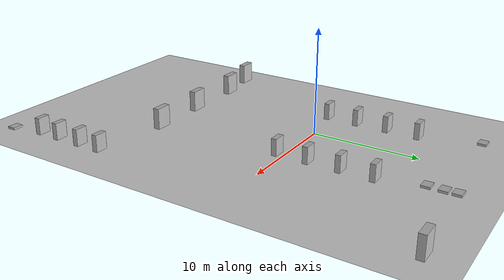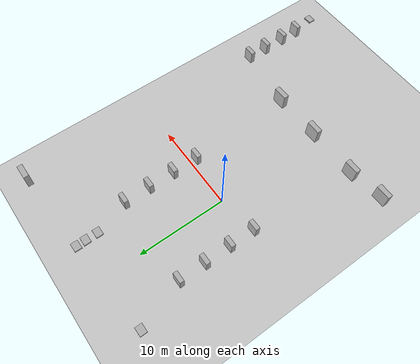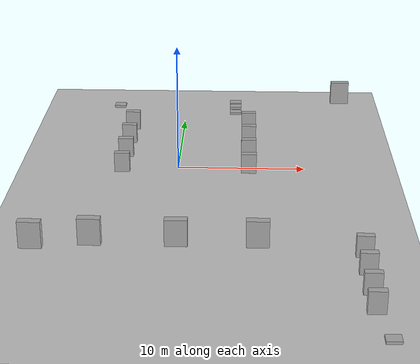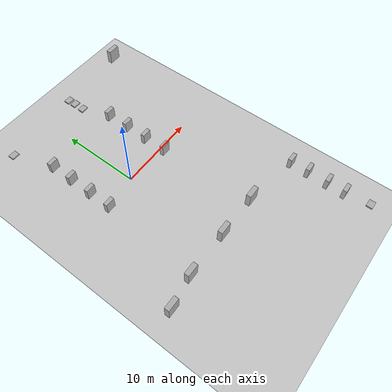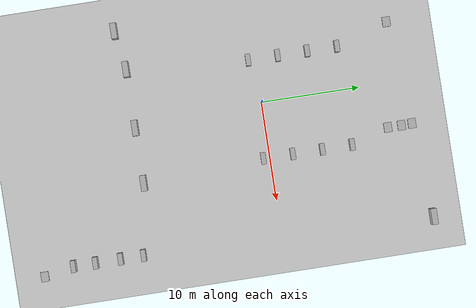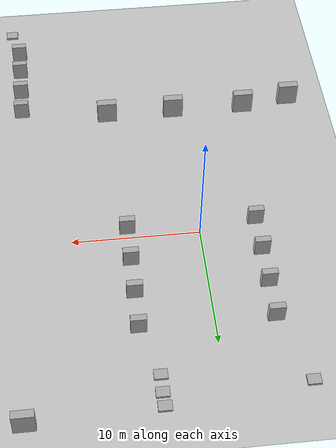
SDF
<sdf version="1.9">
 <world name="world_demo">
  <gravity>0 0 -9.8</gravity>
  <physics type="ode">
   <max_step_size>0.01</max_step_size>
   <real_time_factor>1</real_time_factor>
   <real_time_update_rate>1000</real_time_update_rate>
  </physics>
  <plugin name="ignition::gazebo::systems::Physics" filename="libignition-gazebo-physics-system.so"/>
  <plugin name="ignition::gazebo::systems::UserCommands" filename="libignition-gazebo-user-commands-system.so"/>
  <plugin name="ignition::gazebo::systems::SceneBroadcaster" filename="libignition-gazebo-scene-broadcaster-system.so"/>
  <plugin name="ignition::gazebo::systems::Imu" filename="ignition-gazebo-imu-system"/>
  <plugin name="ignition::gazebo::systems::Sensors" filename="ignition-gazebo-sensors-system">
   <render_engine>ogre2</render_engine>
  </plugin>
  <scene>
   <ambient>1 1 1 1</ambient>
   <background>0.3 0.7 0.9 1</background>
   <shadows>false</shadows>
   <grid>false</grid>
  </scene>
  <magnetic_field>6e-06 2.3e-05 -4.2e-05</magnetic_field>
  <atmosphere type="adiabatic"/>
  <model name="ground_plane">
   <static>true</static>
   <link name="ground">
    <visual name="visual">
     <geometry><plane><normal>0 0 1</normal><size>1000 1000</size></plane></geometry>
     <material>
      <ambient>0.8 0.8 0.8 1</ambient>
      <diffuse>0.8 0.8 0.8 1</diffuse>
      <specular>0.8 0.8 0.8 1</specular>
      <emissive>0.0 0.0 0.0 1</emissive>
     </material>
    </visual>
    <collision name="collision">
     <geometry><plane><normal>0 0 1</normal><size>100 100</size></plane></geometry>
    </collision>
    <inertial>
     <mass>1</mass>
     <inertia><ixx>1</ixx><ixy>0</ixy><ixz>0</ixz><iyy>1</iyy><iyz>0</iyz><izz>1</izz></inertia>
    </inertial>
   </link>
  </model>
  <include>
   <uri>https://fuel.ignitionrobotics.org/1.0/MovAi/models/shelf_big</uri>
   <name>shelf_big_0</name>
   <pose>-9.34177 -13.5598 0 0 -0 0</pose>
  </include>
  <include>
   <uri>https://fuel.ignitionrobotics.org/1.0/MovAi/models/shelf</uri>
   <name>shelf</name>
   <pose>-4.41528 -0.690987 0 0 -0 0</pose>
  </include>
  <include>
   <uri>https://fuel.ignitionrobotics.org/1.0/MovAi/models/shelf</uri>
   <name>shelf_0</name>
   <pose>-4.41528 2.30697 0 0 -0 0</pose>
  </include>
  <include>
   <uri>https://fuel.ignitionrobotics.org/1.0/MovAi/models/shelf</uri>
   <name>shelf_1</name>
   <pose>-4.41528 5.30708 0 0 -0 0</pose>
  </include>
  <include>
   <uri>https://fuel.ignitionrobotics.org/1.0/MovAi/models/shelf</uri>
   <name>shelf_2</name>
   <pose>-4.41528 8.34352 0 0 -0 0</pose>
  </include>
  <include>
   <uri>https://fuel.ignitionrobotics.org/1.0/MovAi/models/shelf</uri>
   <name>shelf_3</name>
   <pose>5.60144 8.34352 0 0 -0 0</pose>
  </include>
  <include>
   <uri>https://fuel.ignitionrobotics.org/1.0/MovAi/models/shelf</uri>
   <name>shelf_4</name>
   <pose>5.60144 5.30708 0 0 -0 0</pose>
  </include>
  <include>
   <uri>https://fuel.ignitionrobotics.org/1.0/MovAi/models/shelf</uri>
   <name>shelf_5</name>
   <pose>5.60144 -0.690987 0 0 -0 0</pose>
  </include>
  <include>
   <uri>https://fuel.ignitionrobotics.org/1.0/MovAi/models/shelf</uri>
   <name>shelf_6</name>
   <pose>5.60144 2.30697 0 0 -0 0</pose>
  </include>
  <include>
   <uri>https://fuel.ignitionrobotics.org/1.0/MovAi/models/pallet_box_mobile</uri>
   <name>pallet_box_mobile</name>
   <pose>4.4161 14.6952 0.01 0 -0 0</pose>
  </include>
  <include>
   <uri>https://fuel.ignitionrobotics.org/1.0/MovAi/models/pallet_box_mobile</uri>
   <name>pallet_box_mobile_0</name>
   <pose>4.45415 13.6212 0.01 0 -0 0</pose>
  </include>
  <include>
   <uri>https://fuel.ignitionrobotics.org/1.0/MovAi/models/pallet_box_mobile</uri>
   <name>pallet_box_mobile_1</name>
   <pose>4.4468 12.229 0.01 0 -0 0</pose>
  </include>
  <include>
   <uri>https://fuel.ignitionrobotics.org/1.0/MovAi/models/pallet_box_mobile</uri>
   <name>pallet_box</name>
   <pose>-6.11913 13.7079 0.01 0 -0 0</pose>
  </include>
  <include>
   <uri>https://fuel.ignitionrobotics.org/1.0/MovAi/models/shelf_big</uri>
   <name>shelf_big_1</name>
   <pose>13.9821 15.319 0 0 -0 0</pose>
  </include>
  <include>
   <uri>https://fuel.ignitionrobotics.org/1.0/MovAi/models/shelf_big</uri>
   <name>shelf_big_2</name>
   <pose>6.19777 -12.9647 0 0 -0 0</pose>
  </include>
  <include>
   <uri>https://fuel.ignitionrobotics.org/1.0/MovAi/models/shelf_big</uri>
   <name>shelf_big_3</name>
   <pose>0.594376 -12.9647 0 0 -0 0</pose>
  </include>
  <include>
   <uri>https://fuel.ignitionrobotics.org/1.0/MovAi/models/shelf_big</uri>
   <name>shelf_big_4</name>
   <pose>-5.36284 -12.9647 0 0 -0 0</pose>
  </include>
  <include>
   <uri>https://fuel.ignitionrobotics.org/1.0/MovAi/models/shelf</uri>
   <name>shelf_7</name>
   <pose>13.3818 -21.2416 0 0 -0 0</pose>
  </include>
  <include>
   <uri>https://fuel.ignitionrobotics.org/1.0/MovAi/models/shelf</uri>
   <name>shelf_8</name>
   <pose>13.3818 -19.0028 0 0 -0 0</pose>
  </include>
  <include>
   <uri>https://fuel.ignitionrobotics.org/1.0/MovAi/models/shelf</uri>
   <name>shelf_9</name>
   <pose>13.3818 -16.4478 0 0 -0 0</pose>
  </include>
  <include>
   <uri>https://fuel.ignitionrobotics.org/1.0/MovAi/models/shelf</uri>
   <name>shelf_10</name>
   <pose>13.3818 -14.1028 0 0 -0 0</pose>
  </include>
  <include>
   <uri>https://fuel.ignitionrobotics.org/1.0/MovAi/models/pallet_box_mobile</uri>
   <name>pallet_box_0</name>
   <pose>14.0222 -24.335 0.01 0 -0 0</pose>
  </include>
  <light name="sun" type="directional">
   <pose>-5 -3 10 0 -0 0</pose>
   <cast_shadows>false</cast_shadows>
   <intensity>1</intensity>
   <direction>0 0 -1</direction>
   <diffuse>1 1 1 1</diffuse>
   <specular>1 1 1 1</specular>
   <attenuation><range>10</range><linear>1</linear><constant>1</constant><quadratic>0</quadratic></attenuation>
   <spot><inner_angle>0</inner_angle><outer_angle>0</outer_angle><falloff>0</falloff></spot>
  </light>
 </world>
</sdf>

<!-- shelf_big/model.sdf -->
<sdf version="1.7">
  <model name="shelf_big">
    <static>true</static>
    <link name="link">
      <pose>0 0 1.0 0 0 0</pose>
      <visual name="visual">
        <geometry>
          <box>
            <size>1.6 0.6 2.0</size>
          </box>
        </geometry>
        <material>
          <ambient>0.7 0.7 0.7 1</ambient>
          <diffuse>0.7 0.7 0.7 1</diffuse>
        </material>
      </visual>
      <collision name="collision">
        <geometry>
          <box>
            <size>1.6 0.6 2.0</size>
          </box>
        </geometry>
      </collision>
    </link>
  </model>
</sdf>

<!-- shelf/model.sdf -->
<sdf version="1.7">
  <model name="shelf">
    <static>true</static>
    <link name="link">
      <pose>0 0 0.8 0 0 0</pose>
      <visual name="visual">
        <geometry>
          <box>
            <size>1.2 0.5 1.6</size>
          </box>
        </geometry>
        <material>
          <ambient>0.7 0.7 0.7 1</ambient>
          <diffuse>0.7 0.7 0.7 1</diffuse>
        </material>
      </visual>
      <collision name="collision">
        <geometry>
          <box>
            <size>1.2 0.5 1.6</size>
          </box>
        </geometry>
      </collision>
    </link>
  </model>
</sdf>

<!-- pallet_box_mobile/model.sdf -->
<sdf version="1.7">
  <model name="pallet_box_mobile">
    <static>true</static>
    <link name="link">
      <pose>0 0 0.1 0 0 0</pose>
      <visual name="visual">
        <geometry>
          <box>
            <size>1.0 0.8 0.2</size>
          </box>
        </geometry>
        <material>
          <ambient>0.7 0.7 0.7 1</ambient>
          <diffuse>0.7 0.7 0.7 1</diffuse>
        </material>
      </visual>
      <collision name="collision">
        <geometry>
          <box>
            <size>1.0 0.8 0.2</size>
          </box>
        </geometry>
      </collision>
    </link>
  </model>
</sdf>
